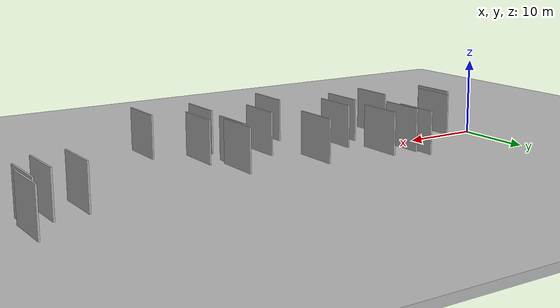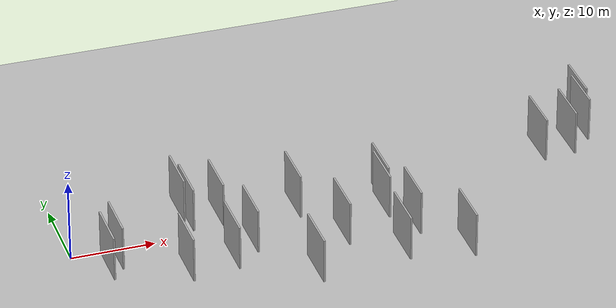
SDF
<?xml version="1.0" encoding="utf-8"?>

<sdf version="1.6">

   <world name="default">

      <gui fullscreen="0">

         <camera name="user_camera">

            <pose>-15 0 4.57585 0 0 0</pose>

            <view_controller>orbit</view_controller>

         </camera>

      </gui>

      <scene>

         <sky>

           <clouds>

             <speed>12</speed>

           </clouds>

         </sky>

         <ambient>0.4 0.4 0.4 1</ambient>

         <background>0.7 0.7 0.7 1</background>

         <shadows>1</shadows>

      </scene>

      <gravity>0 0 -9.8066</gravity>

      <magnetic_field>6e-06 2.3e-05 -4.2e-05</magnetic_field>

      <physics default="0" name="default_physics" type="ode">

         <ode>

            <solver>

               <type>quick</type>

               <iters>10</iters>

               <sor>1.0</sor>

               <use_dynamic_moi_rescaling>0</use_dynamic_moi_rescaling>

            </solver>

            <constraints>

               <cfm>0</cfm>

               <erp>0.2</erp>

               <contact_max_correcting_vel>100</contact_max_correcting_vel>

               <contact_surface_layer>0.001</contact_surface_layer>

            </constraints>

         </ode>

         <max_step_size>0.004</max_step_size>

         <real_time_factor>1</real_time_factor>

         <real_time_update_rate>250</real_time_update_rate>

      </physics>

      <light name="sun" type="directional">

         <cast_shadows>1</cast_shadows>

         <pose>0 0 10 0 0 0</pose>

         <diffuse>0.8 0.8 0.8 1</diffuse>

         <specular>0.2 0.2 0.2 1</specular>

         <attenuation>

            <range>1000</range>

            <constant>0.9</constant>

            <linear>0.01</linear>

            <quadratic>0.001</quadratic>

         </attenuation>

         <direction>-0.5 0.1 -0.9</direction>

      </light>

      <include>

         <name>ground_plane_1</name>

         <uri>model://HANNAS_ground_plane</uri>

         <pose>0 0 0  0 0 0</pose>

      </include>

      <include>

         <name>ground_plane_2</name>

         <uri>model://HANNAS_ground_plane</uri>

         <pose>100 0 0  0 0 0</pose>

      </include>

      <model name="HANNAS_wall_1">

         <static>1</static>

         <pose frame="">43.8868 -11.6122 0.0 0.000000 0.000000 1.570796</pose>

         <link name="link">

            <pose frame="">0 0 3.00 0 0 0</pose>

            <collision name="collision">

               <geometry>

                  <box>

                     <size>6.00 0.2 6.00</size>

                  </box>

               </geometry>

               <max_contacts>10</max_contacts>

               <surface>

                  <contact>

                     <ode/>

                  </contact>

                  <bounce/>

                  <friction>

                     <torsional>

                        <ode/>

                     </torsional>

                     <ode/>

                  </friction>

               </surface>

            </collision>

            <visual name="visual">

               <cast_shadows>0</cast_shadows>

               <geometry>

                  <box>

                     <size>6.00 0.2 6.00</size>

                  </box>

               </geometry>

               <material>

                  <script>

                     <uri>model://HANNAS_wall/materials/scripts</uri>

                     <uri>model://HANNAS_wall/materials/textures</uri>

                     <name>vrc/HANNAS_wall</name>

                  </script>

               </material>

            </visual>

            <self_collide>0</self_collide>

            <enable_wind>0</enable_wind>

            <kinematic>0</kinematic>

         </link>

      </model>

      <model name="HANNAS_wall_2">

         <static>1</static>

         <pose frame="">37.6264 0.9709 0.0 0.000000 0.000000 1.570796</pose>

         <link name="link">

            <pose frame="">0 0 3.00 0 0 0</pose>

            <collision name="collision">

               <geometry>

                  <box>

                     <size>6.00 0.2 6.00</size>

                  </box>

               </geometry>

               <max_contacts>10</max_contacts>

               <surface>

                  <contact>

                     <ode/>

                  </contact>

                  <bounce/>

                  <friction>

                     <torsional>

                        <ode/>

                     </torsional>

                     <ode/>

                  </friction>

               </surface>

            </collision>

            <visual name="visual">

               <cast_shadows>0</cast_shadows>

               <geometry>

                  <box>

                     <size>6.00 0.2 6.00</size>

                  </box>

               </geometry>

               <material>

                  <script>

                     <uri>model://HANNAS_wall/materials/scripts</uri>

                     <uri>model://HANNAS_wall/materials/textures</uri>

                     <name>vrc/HANNAS_wall</name>

                  </script>

               </material>

            </visual>

            <self_collide>0</self_collide>

            <enable_wind>0</enable_wind>

            <kinematic>0</kinematic>

         </link>

      </model>

      <model name="HANNAS_wall_3">

         <static>1</static>

         <pose frame="">65.8172 10.5460 0.0 0.000000 0.000000 1.570796</pose>

         <link name="link">

            <pose frame="">0 0 3.00 0 0 0</pose>

            <collision name="collision">

               <geometry>

                  <box>

                     <size>6.00 0.2 6.00</size>

                  </box>

               </geometry>

               <max_contacts>10</max_contacts>

               <surface>

                  <contact>

                     <ode/>

                  </contact>

                  <bounce/>

                  <friction>

                     <torsional>

                        <ode/>

                     </torsional>

                     <ode/>

                  </friction>

               </surface>

            </collision>

            <visual name="visual">

               <cast_shadows>0</cast_shadows>

               <geometry>

                  <box>

                     <size>6.00 0.2 6.00</size>

                  </box>

               </geometry>

               <material>

                  <script>

                     <uri>model://HANNAS_wall/materials/scripts</uri>

                     <uri>model://HANNAS_wall/materials/textures</uri>

                     <name>vrc/HANNAS_wall</name>

                  </script>

               </material>

            </visual>

            <self_collide>0</self_collide>

            <enable_wind>0</enable_wind>

            <kinematic>0</kinematic>

         </link>

      </model>

      <model name="HANNAS_wall_4">

         <static>1</static>

         <pose frame="">30.9782 -4.9634 0.0 0.000000 0.000000 1.570796</pose>

         <link name="link">

            <pose frame="">0 0 3.00 0 0 0</pose>

            <collision name="collision">

               <geometry>

                  <box>

                     <size>6.00 0.2 6.00</size>

                  </box>

               </geometry>

               <max_contacts>10</max_contacts>

               <surface>

                  <contact>

                     <ode/>

                  </contact>

                  <bounce/>

                  <friction>

                     <torsional>

                        <ode/>

                     </torsional>

                     <ode/>

                  </friction>

               </surface>

            </collision>

            <visual name="visual">

               <cast_shadows>0</cast_shadows>

               <geometry>

                  <box>

                     <size>6.00 0.2 6.00</size>

                  </box>

               </geometry>

               <material>

                  <script>

                     <uri>model://HANNAS_wall/materials/scripts</uri>

                     <uri>model://HANNAS_wall/materials/textures</uri>

                     <name>vrc/HANNAS_wall</name>

                  </script>

               </material>

            </visual>

            <self_collide>0</self_collide>

            <enable_wind>0</enable_wind>

            <kinematic>0</kinematic>

         </link>

      </model>

      <model name="HANNAS_wall_5">

         <static>1</static>

         <pose frame="">3.4092 -3.5799 0.0 0.000000 0.000000 1.570796</pose>

         <link name="link">

            <pose frame="">0 0 3.00 0 0 0</pose>

            <collision name="collision">

               <geometry>

                  <box>

                     <size>6.00 0.2 6.00</size>

                  </box>

               </geometry>

               <max_contacts>10</max_contacts>

               <surface>

                  <contact>

                     <ode/>

                  </contact>

                  <bounce/>

                  <friction>

                     <torsional>

                        <ode/>

                     </torsional>

                     <ode/>

                  </friction>

               </surface>

            </collision>

            <visual name="visual">

               <cast_shadows>0</cast_shadows>

               <geometry>

                  <box>

                     <size>6.00 0.2 6.00</size>

                  </box>

               </geometry>

               <material>

                  <script>

                     <uri>model://HANNAS_wall/materials/scripts</uri>

                     <uri>model://HANNAS_wall/materials/textures</uri>

                     <name>vrc/HANNAS_wall</name>

                  </script>

               </material>

            </visual>

            <self_collide>0</self_collide>

            <enable_wind>0</enable_wind>

            <kinematic>0</kinematic>

         </link>

      </model>

      <model name="HANNAS_wall_6">

         <static>1</static>

         <pose frame="">36.5905 -9.9612 0.0 0.000000 0.000000 1.570796</pose>

         <link name="link">

            <pose frame="">0 0 3.00 0 0 0</pose>

            <collision name="collision">

               <geometry>

                  <box>

                     <size>6.00 0.2 6.00</size>

                  </box>

               </geometry>

               <max_contacts>10</max_contacts>

               <surface>

                  <contact>

                     <ode/>

                  </contact>

                  <bounce/>

                  <friction>

                     <torsional>

                        <ode/>

                     </torsional>

                     <ode/>

                  </friction>

               </surface>

            </collision>

            <visual name="visual">

               <cast_shadows>0</cast_shadows>

               <geometry>

                  <box>

                     <size>6.00 0.2 6.00</size>

                  </box>

               </geometry>

               <material>

                  <script>

                     <uri>model://HANNAS_wall/materials/scripts</uri>

                     <uri>model://HANNAS_wall/materials/textures</uri>

                     <name>vrc/HANNAS_wall</name>

                  </script>

               </material>

            </visual>

            <self_collide>0</self_collide>

            <enable_wind>0</enable_wind>

            <kinematic>0</kinematic>

         </link>

      </model>

      <model name="HANNAS_wall_7">

         <static>1</static>

         <pose frame="">14.8238 3.4158 0.0 0.000000 0.000000 1.570796</pose>

         <link name="link">

            <pose frame="">0 0 3.00 0 0 0</pose>

            <collision name="collision">

               <geometry>

                  <box>

                     <size>6.00 0.2 6.00</size>

                  </box>

               </geometry>

               <max_contacts>10</max_contacts>

               <surface>

                  <contact>

                     <ode/>

                  </contact>

                  <bounce/>

                  <friction>

                     <torsional>

                        <ode/>

                     </torsional>

                     <ode/>

                  </friction>

               </surface>

            </collision>

            <visual name="visual">

               <cast_shadows>0</cast_shadows>

               <geometry>

                  <box>

                     <size>6.00 0.2 6.00</size>

                  </box>

               </geometry>

               <material>

                  <script>

                     <uri>model://HANNAS_wall/materials/scripts</uri>

                     <uri>model://HANNAS_wall/materials/textures</uri>

                     <name>vrc/HANNAS_wall</name>

                  </script>

               </material>

            </visual>

            <self_collide>0</self_collide>

            <enable_wind>0</enable_wind>

            <kinematic>0</kinematic>

         </link>

      </model>

      <model name="HANNAS_wall_8">

         <static>1</static>

         <pose frame="">65.2599 8.0636 0.0 0.000000 0.000000 1.570796</pose>

         <link name="link">

            <pose frame="">0 0 3.00 0 0 0</pose>

            <collision name="collision">

               <geometry>

                  <box>

                     <size>6.00 0.2 6.00</size>

                  </box>

               </geometry>

               <max_contacts>10</max_contacts>

               <surface>

                  <contact>

                     <ode/>

                  </contact>

                  <bounce/>

                  <friction>

                     <torsional>

                        <ode/>

                     </torsional>

                     <ode/>

                  </friction>

               </surface>

            </collision>

            <visual name="visual">

               <cast_shadows>0</cast_shadows>

               <geometry>

                  <box>

                     <size>6.00 0.2 6.00</size>

                  </box>

               </geometry>

               <material>

                  <script>

                     <uri>model://HANNAS_wall/materials/scripts</uri>

                     <uri>model://HANNAS_wall/materials/textures</uri>

                     <name>vrc/HANNAS_wall</name>

                  </script>

               </material>

            </visual>

            <self_collide>0</self_collide>

            <enable_wind>0</enable_wind>

            <kinematic>0</kinematic>

         </link>

      </model>

      <model name="HANNAS_wall_9">

         <static>1</static>

         <pose frame="">25.7594 -11.3495 0.0 0.000000 0.000000 1.570796</pose>

         <link name="link">

            <pose frame="">0 0 3.00 0 0 0</pose>

            <collision name="collision">

               <geometry>

                  <box>

                     <size>6.00 0.2 6.00</size>

                  </box>

               </geometry>

               <max_contacts>10</max_contacts>

               <surface>

                  <contact>

                     <ode/>

                  </contact>

                  <bounce/>

                  <friction>

                     <torsional>

                        <ode/>

                     </torsional>

                     <ode/>

                  </friction>

               </surface>

            </collision>

            <visual name="visual">

               <cast_shadows>0</cast_shadows>

               <geometry>

                  <box>

                     <size>6.00 0.2 6.00</size>

                  </box>

               </geometry>

               <material>

                  <script>

                     <uri>model://HANNAS_wall/materials/scripts</uri>

                     <uri>model://HANNAS_wall/materials/textures</uri>

                     <name>vrc/HANNAS_wall</name>

                  </script>

               </material>

            </visual>

            <self_collide>0</self_collide>

            <enable_wind>0</enable_wind>

            <kinematic>0</kinematic>

         </link>

      </model>

      <model name="HANNAS_wall_10">

         <static>1</static>

         <pose frame="">18.4055 3.4214 0.0 0.000000 0.000000 1.570796</pose>

         <link name="link">

            <pose frame="">0 0 3.00 0 0 0</pose>

            <collision name="collision">

               <geometry>

                  <box>

                     <size>6.00 0.2 6.00</size>

                  </box>

               </geometry>

               <max_contacts>10</max_contacts>

               <surface>

                  <contact>

                     <ode/>

                  </contact>

                  <bounce/>

                  <friction>

                     <torsional>

                        <ode/>

                     </torsional>

                     <ode/>

                  </friction>

               </surface>

            </collision>

            <visual name="visual">

               <cast_shadows>0</cast_shadows>

               <geometry>

                  <box>

                     <size>6.00 0.2 6.00</size>

                  </box>

               </geometry>

               <material>

                  <script>

                     <uri>model://HANNAS_wall/materials/scripts</uri>

                     <uri>model://HANNAS_wall/materials/textures</uri>

                     <name>vrc/HANNAS_wall</name>

                  </script>

               </material>

            </visual>

            <self_collide>0</self_collide>

            <enable_wind>0</enable_wind>

            <kinematic>0</kinematic>

         </link>

      </model>

      <model name="HANNAS_wall_11">

         <static>1</static>

         <pose frame="">39.4593 -5.2583 0.0 0.000000 0.000000 1.570796</pose>

         <link name="link">

            <pose frame="">0 0 3.00 0 0 0</pose>

            <collision name="collision">

               <geometry>

                  <box>

                     <size>6.00 0.2 6.00</size>

                  </box>

               </geometry>

               <max_contacts>10</max_contacts>

               <surface>

                  <contact>

                     <ode/>

                  </contact>

                  <bounce/>

                  <friction>

                     <torsional>

                        <ode/>

                     </torsional>

                     <ode/>

                  </friction>

               </surface>

            </collision>

            <visual name="visual">

               <cast_shadows>0</cast_shadows>

               <geometry>

                  <box>

                     <size>6.00 0.2 6.00</size>

                  </box>

               </geometry>

               <material>

                  <script>

                     <uri>model://HANNAS_wall/materials/scripts</uri>

                     <uri>model://HANNAS_wall/materials/textures</uri>

                     <name>vrc/HANNAS_wall</name>

                  </script>

               </material>

            </visual>

            <self_collide>0</self_collide>

            <enable_wind>0</enable_wind>

            <kinematic>0</kinematic>

         </link>

      </model>

      <model name="HANNAS_wall_12">

         <static>1</static>

         <pose frame="">27.4023 2.3140 0.0 0.000000 0.000000 1.570796</pose>

         <link name="link">

            <pose frame="">0 0 3.00 0 0 0</pose>

            <collision name="collision">

               <geometry>

                  <box>

                     <size>6.00 0.2 6.00</size>

                  </box>

               </geometry>

               <max_contacts>10</max_contacts>

               <surface>

                  <contact>

                     <ode/>

                  </contact>

                  <bounce/>

                  <friction>

                     <torsional>

                        <ode/>

                     </torsional>

                     <ode/>

                  </friction>

               </surface>

            </collision>

            <visual name="visual">

               <cast_shadows>0</cast_shadows>

               <geometry>

                  <box>

                     <size>6.00 0.2 6.00</size>

                  </box>

               </geometry>

               <material>

                  <script>

                     <uri>model://HANNAS_wall/materials/scripts</uri>

                     <uri>model://HANNAS_wall/materials/textures</uri>

                     <name>vrc/HANNAS_wall</name>

                  </script>

               </material>

            </visual>

            <self_collide>0</self_collide>

            <enable_wind>0</enable_wind>

            <kinematic>0</kinematic>

         </link>

      </model>

      <model name="HANNAS_wall_13">

         <static>1</static>

         <pose frame="">58.7687 5.2185 0.0 0.000000 0.000000 1.570796</pose>

         <link name="link">

            <pose frame="">0 0 3.00 0 0 0</pose>

            <collision name="collision">

               <geometry>

                  <box>

                     <size>6.00 0.2 6.00</size>

                  </box>

               </geometry>

               <max_contacts>10</max_contacts>

               <surface>

                  <contact>

                     <ode/>

                  </contact>

                  <bounce/>

                  <friction>

                     <torsional>

                        <ode/>

                     </torsional>

                     <ode/>

                  </friction>

               </surface>

            </collision>

            <visual name="visual">

               <cast_shadows>0</cast_shadows>

               <geometry>

                  <box>

                     <size>6.00 0.2 6.00</size>

                  </box>

               </geometry>

               <material>

                  <script>

                     <uri>model://HANNAS_wall/materials/scripts</uri>

                     <uri>model://HANNAS_wall/materials/textures</uri>

                     <name>vrc/HANNAS_wall</name>

                  </script>

               </material>

            </visual>

            <self_collide>0</self_collide>

            <enable_wind>0</enable_wind>

            <kinematic>0</kinematic>

         </link>

      </model>

      <model name="HANNAS_wall_14">

         <static>1</static>

         <pose frame="">11.8633 -6.6331 0.0 0.000000 0.000000 1.570796</pose>

         <link name="link">

            <pose frame="">0 0 3.00 0 0 0</pose>

            <collision name="collision">

               <geometry>

                  <box>

                     <size>6.00 0.2 6.00</size>

                  </box>

               </geometry>

               <max_contacts>10</max_contacts>

               <surface>

                  <contact>

                     <ode/>

                  </contact>

                  <bounce/>

                  <friction>

                     <torsional>

                        <ode/>

                     </torsional>

                     <ode/>

                  </friction>

               </surface>

            </collision>

            <visual name="visual">

               <cast_shadows>0</cast_shadows>

               <geometry>

                  <box>

                     <size>6.00 0.2 6.00</size>

                  </box>

               </geometry>

               <material>

                  <script>

                     <uri>model://HANNAS_wall/materials/scripts</uri>

                     <uri>model://HANNAS_wall/materials/textures</uri>

                     <name>vrc/HANNAS_wall</name>

                  </script>

               </material>

            </visual>

            <self_collide>0</self_collide>

            <enable_wind>0</enable_wind>

            <kinematic>0</kinematic>

         </link>

      </model>

      <model name="HANNAS_wall_15">

         <static>1</static>

         <pose frame="">17.5225 -5.8248 0.0 0.000000 0.000000 1.570796</pose>

         <link name="link">

            <pose frame="">0 0 3.00 0 0 0</pose>

            <collision name="collision">

               <geometry>

                  <box>

                     <size>6.00 0.2 6.00</size>

                  </box>

               </geometry>

               <max_contacts>10</max_contacts>

               <surface>

                  <contact>

                     <ode/>

                  </contact>

                  <bounce/>

                  <friction>

                     <torsional>

                        <ode/>

                     </torsional>

                     <ode/>

                  </friction>

               </surface>

            </collision>

            <visual name="visual">

               <cast_shadows>0</cast_shadows>

               <geometry>

                  <box>

                     <size>6.00 0.2 6.00</size>

                  </box>

               </geometry>

               <material>

                  <script>

                     <uri>model://HANNAS_wall/materials/scripts</uri>

                     <uri>model://HANNAS_wall/materials/textures</uri>

                     <name>vrc/HANNAS_wall</name>

                  </script>

               </material>

            </visual>

            <self_collide>0</self_collide>

            <enable_wind>0</enable_wind>

            <kinematic>0</kinematic>

         </link>

      </model>

      <model name="HANNAS_wall_16">

         <static>1</static>

         <pose frame="">62.6330 5.6442 0.0 0.000000 0.000000 1.570796</pose>

         <link name="link">

            <pose frame="">0 0 3.00 0 0 0</pose>

            <collision name="collision">

               <geometry>

                  <box>

                     <size>6.00 0.2 6.00</size>

                  </box>

               </geometry>

               <max_contacts>10</max_contacts>

               <surface>

                  <contact>

                     <ode/>

                  </contact>

                  <bounce/>

                  <friction>

                     <torsional>

                        <ode/>

                     </torsional>

                     <ode/>

                  </friction>

               </surface>

            </collision>

            <visual name="visual">

               <cast_shadows>0</cast_shadows>

               <geometry>

                  <box>

                     <size>6.00 0.2 6.00</size>

                  </box>

               </geometry>

               <material>

                  <script>

                     <uri>model://HANNAS_wall/materials/scripts</uri>

                     <uri>model://HANNAS_wall/materials/textures</uri>

                     <name>vrc/HANNAS_wall</name>

                  </script>

               </material>

            </visual>

            <self_collide>0</self_collide>

            <enable_wind>0</enable_wind>

            <kinematic>0</kinematic>

         </link>

      </model>

      <model name="HANNAS_wall_17">

         <static>1</static>

         <pose frame="">37.1906 -0.8558 0.0 0.000000 0.000000 1.570796</pose>

         <link name="link">

            <pose frame="">0 0 3.00 0 0 0</pose>

            <collision name="collision">

               <geometry>

                  <box>

                     <size>6.00 0.2 6.00</size>

                  </box>

               </geometry>

               <max_contacts>10</max_contacts>

               <surface>

                  <contact>

                     <ode/>

                  </contact>

                  <bounce/>

                  <friction>

                     <torsional>

                        <ode/>

                     </torsional>

                     <ode/>

                  </friction>

               </surface>

            </collision>

            <visual name="visual">

               <cast_shadows>0</cast_shadows>

               <geometry>

                  <box>

                     <size>6.00 0.2 6.00</size>

                  </box>

               </geometry>

               <material>

                  <script>

                     <uri>model://HANNAS_wall/materials/scripts</uri>

                     <uri>model://HANNAS_wall/materials/textures</uri>

                     <name>vrc/HANNAS_wall</name>

                  </script>

               </material>

            </visual>

            <self_collide>0</self_collide>

            <enable_wind>0</enable_wind>

            <kinematic>0</kinematic>

         </link>

      </model>

      <model name="HANNAS_wall_18">

         <static>1</static>

         <pose frame="">4.9351 -1.8012 0.0 0.000000 0.000000 1.570796</pose>

         <link name="link">

            <pose frame="">0 0 3.00 0 0 0</pose>

            <collision name="collision">

               <geometry>

                  <box>

                     <size>6.00 0.2 6.00</size>

                  </box>

               </geometry>

               <max_contacts>10</max_contacts>

               <surface>

                  <contact>

                     <ode/>

                  </contact>

                  <bounce/>

                  <friction>

                     <torsional>

                        <ode/>

                     </torsional>

                     <ode/>

                  </friction>

               </surface>

            </collision>

            <visual name="visual">

               <cast_shadows>0</cast_shadows>

               <geometry>

                  <box>

                     <size>6.00 0.2 6.00</size>

                  </box>

               </geometry>

               <material>

                  <script>

                     <uri>model://HANNAS_wall/materials/scripts</uri>

                     <uri>model://HANNAS_wall/materials/textures</uri>

                     <name>vrc/HANNAS_wall</name>

                  </script>

               </material>

            </visual>

            <self_collide>0</self_collide>

            <enable_wind>0</enable_wind>

            <kinematic>0</kinematic>

         </link>

      </model>

      <model name="HANNAS_wall_19">

         <static>1</static>

         <pose frame="">20.5377 -3.1805 0.0 0.000000 0.000000 1.570796</pose>

         <link name="link">

            <pose frame="">0 0 3.00 0 0 0</pose>

            <collision name="collision">

               <geometry>

                  <box>

                     <size>6.00 0.2 6.00</size>

                  </box>

               </geometry>

               <max_contacts>10</max_contacts>

               <surface>

                  <contact>

                     <ode/>

                  </contact>

                  <bounce/>

                  <friction>

                     <torsional>

                        <ode/>

                     </torsional>

                     <ode/>

                  </friction>

               </surface>

            </collision>

            <visual name="visual">

               <cast_shadows>0</cast_shadows>

               <geometry>

                  <box>

                     <size>6.00 0.2 6.00</size>

                  </box>

               </geometry>

               <material>

                  <script>

                     <uri>model://HANNAS_wall/materials/scripts</uri>

                     <uri>model://HANNAS_wall/materials/textures</uri>

                     <name>vrc/HANNAS_wall</name>

                  </script>

               </material>

            </visual>

            <self_collide>0</self_collide>

            <enable_wind>0</enable_wind>

            <kinematic>0</kinematic>

         </link>

      </model>

      <model name="HANNAS_wall_20">

         <static>1</static>

         <pose frame="">14.3497 5.5900 0.0 0.000000 0.000000 1.570796</pose>

         <link name="link">

            <pose frame="">0 0 3.00 0 0 0</pose>

            <collision name="collision">

               <geometry>

                  <box>

                     <size>6.00 0.2 6.00</size>

                  </box>

               </geometry>

               <max_contacts>10</max_contacts>

               <surface>

                  <contact>

                     <ode/>

                  </contact>

                  <bounce/>

                  <friction>

                     <torsional>

                        <ode/>

                     </torsional>

                     <ode/>

                  </friction>

               </surface>

            </collision>

            <visual name="visual">

               <cast_shadows>0</cast_shadows>

               <geometry>

                  <box>

                     <size>6.00 0.2 6.00</size>

                  </box>

               </geometry>

               <material>

                  <script>

                     <uri>model://HANNAS_wall/materials/scripts</uri>

                     <uri>model://HANNAS_wall/materials/textures</uri>

                     <name>vrc/HANNAS_wall</name>

                  </script>

               </material>

            </visual>

            <self_collide>0</self_collide>

            <enable_wind>0</enable_wind>

            <kinematic>0</kinematic>

         </link>

      </model>

   </world>

</sdf>

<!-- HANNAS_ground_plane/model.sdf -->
<sdf version="1.4">
<model name="HANNAS_ground_plane">
  <static>true</static>
    <link name="link">
      <collision name="collision">
        <geometry>
          <plane>
            <normal>0 0 1</normal>
            <size>1000 1000</size>
          </plane>
        </geometry>
        <surface>
          <friction>
            <ode>
              <mu>100</mu>
              <mu2>50</mu2>
            </ode>
          </friction>
        </surface>
      </collision>
      <visual name="visual">
        <cast_shadows>false</cast_shadows>
        <geometry>
          <plane>
            <normal>0 0 1</normal>
            <size>1000 1000</size>
          </plane>
        </geometry>
        <material>
          <script>
            <uri>model://HANNAS_ground_plane/materials/scripts/HANNAS_ground_plane.material</uri>
	    <uri>model://HANNAS_ground_plane/materials/textures</uri>
            <name>HANNASGroundPlane/Image</name>
          </script>
        </material>
      </visual>
    </link>
  </model>
</sdf>
